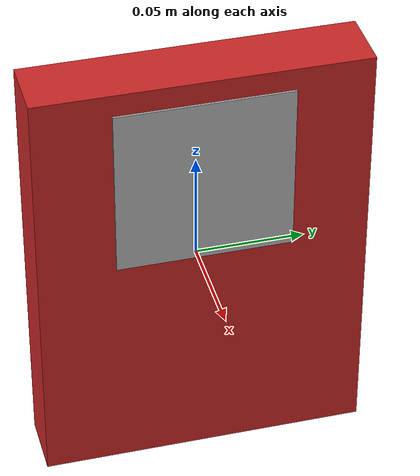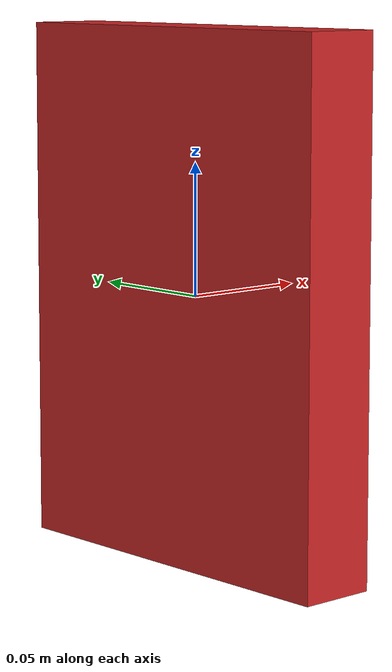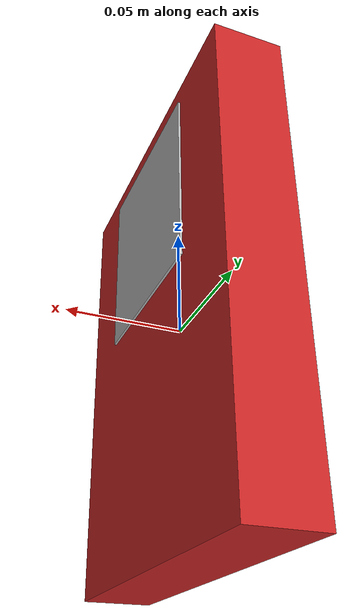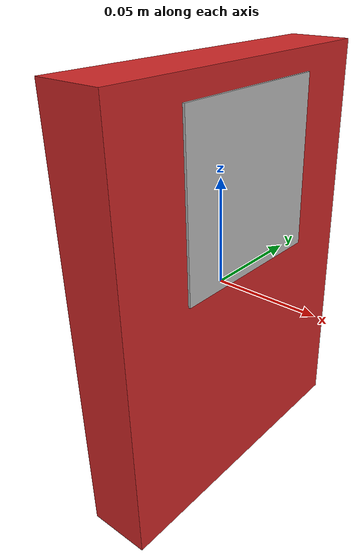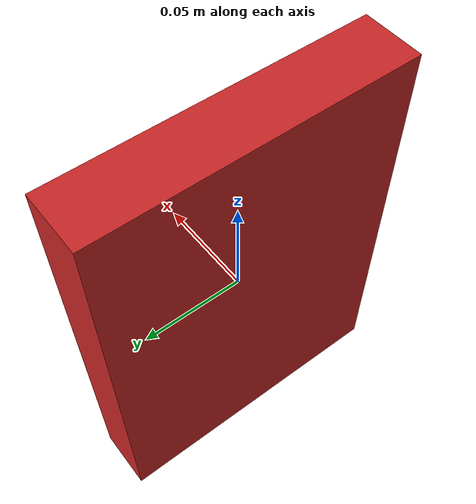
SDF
<?xml version="1.0" ?>
<sdf version="1.6">
  <model name="book_red">
    <static>false</static>
    <link name="link">
      <inertial>
        <mass>0.2</mass>
        <inertia>
          <ixx>0.0001</ixx>
          <ixy>0</ixy>
          <ixz>0</ixz>
          <iyy>0.0001</iyy>
          <iyz>0</iyz>
          <izz>0.0001</izz>
        </inertia>
      </inertial>

      <collision name="collision">
        <geometry>
          <box>
            <size>0.03 0.15 0.2</size>
          </box>
        </geometry>
      </collision>

      <visual name="visual">
        <geometry>
          <box>
            <size>0.03 0.15 0.2</size>
          </box>
        </geometry>
        <material>
          <script>
            <uri>file://media/materials/scripts/gazebo.material</uri>
            <name>Gazebo/Red</name>
          </script>
        </material>
      </visual>

      <!-- QR Code Sticker on the front face -->
      <visual name="qrcode_visual">
        <pose>0.016 0 0.05 0 0 0</pose> <!-- Slightly in front (+x) and upper part -->
        <geometry>
          <box>
            <size>0.001 0.08 0.08</size>
          </box>
        </geometry>
        <material>
          <script>
            <uri>model://book_tags/materials/scripts</uri>
            <uri>model://book_tags/materials/textures</uri>
            <name>BookTag/ShelfA</name>
          </script>
        </material>
      </visual>
    </link>
  </model>
</sdf>
